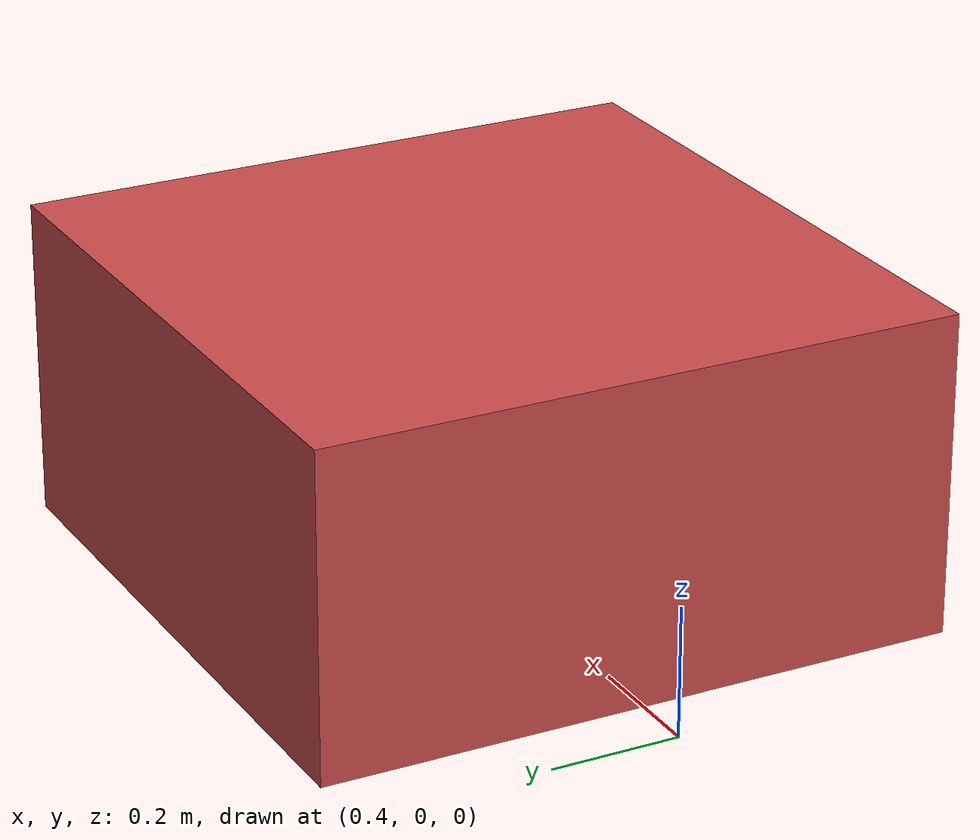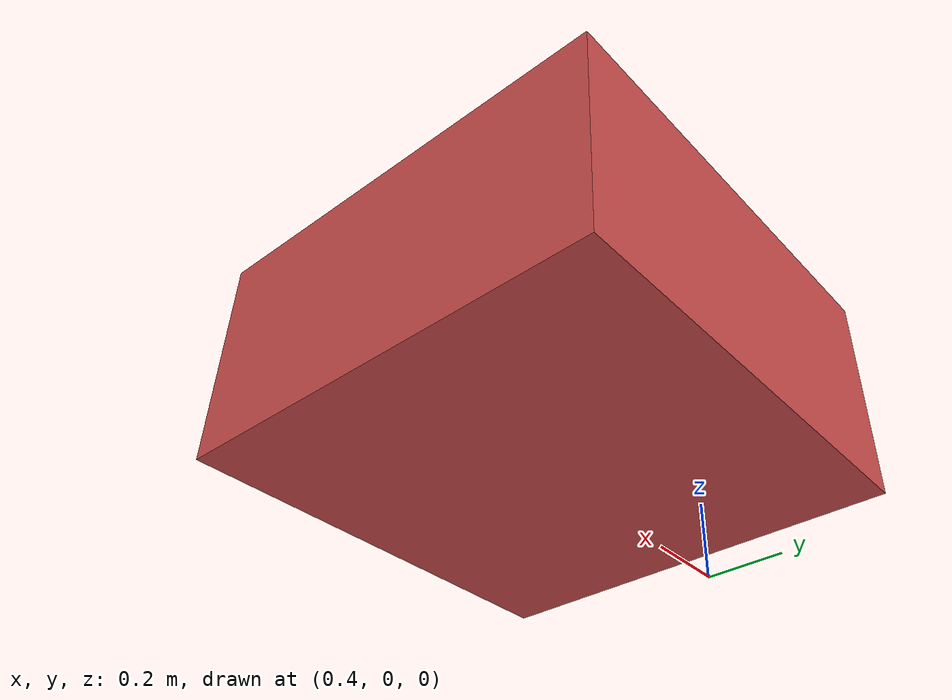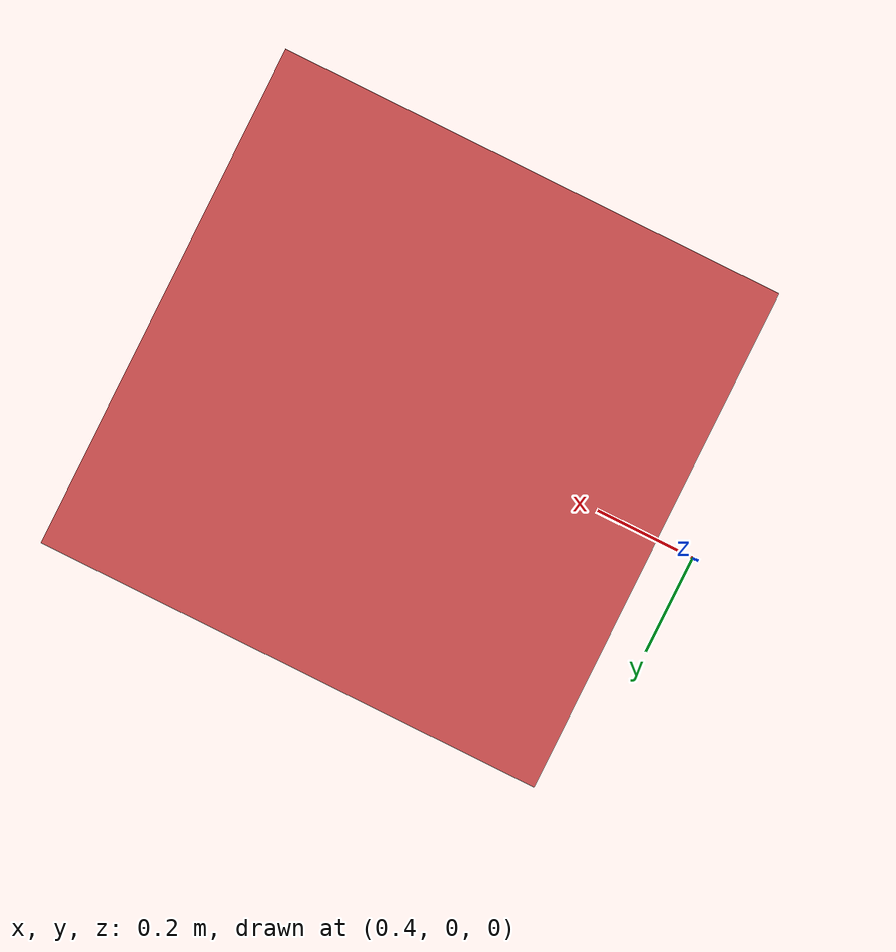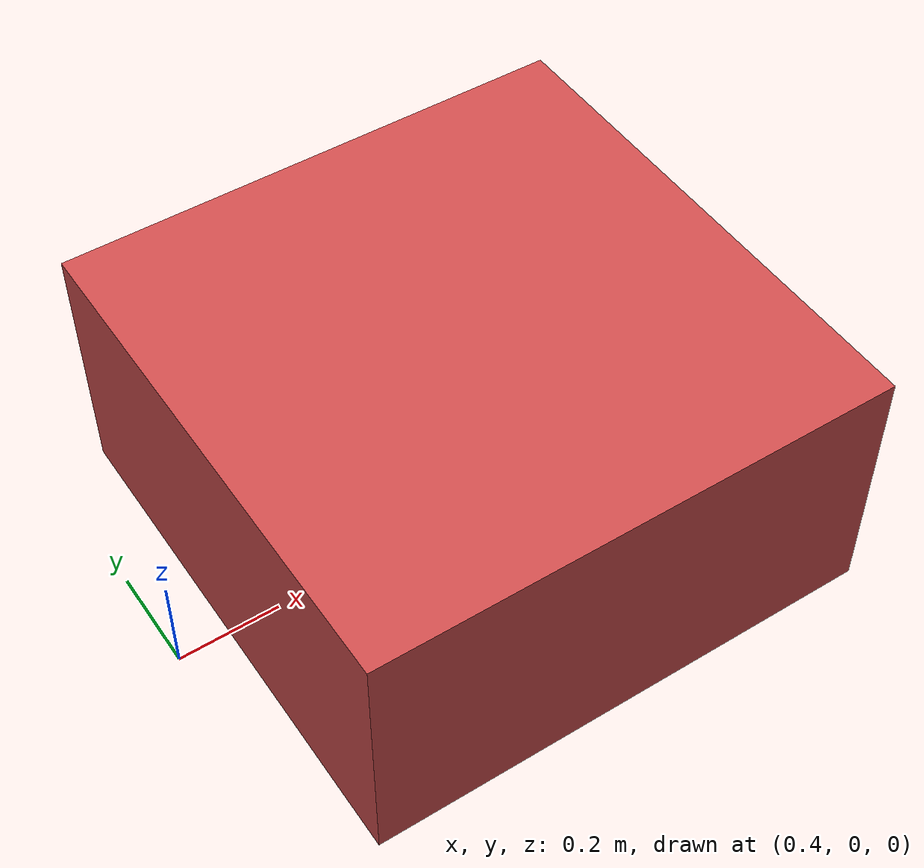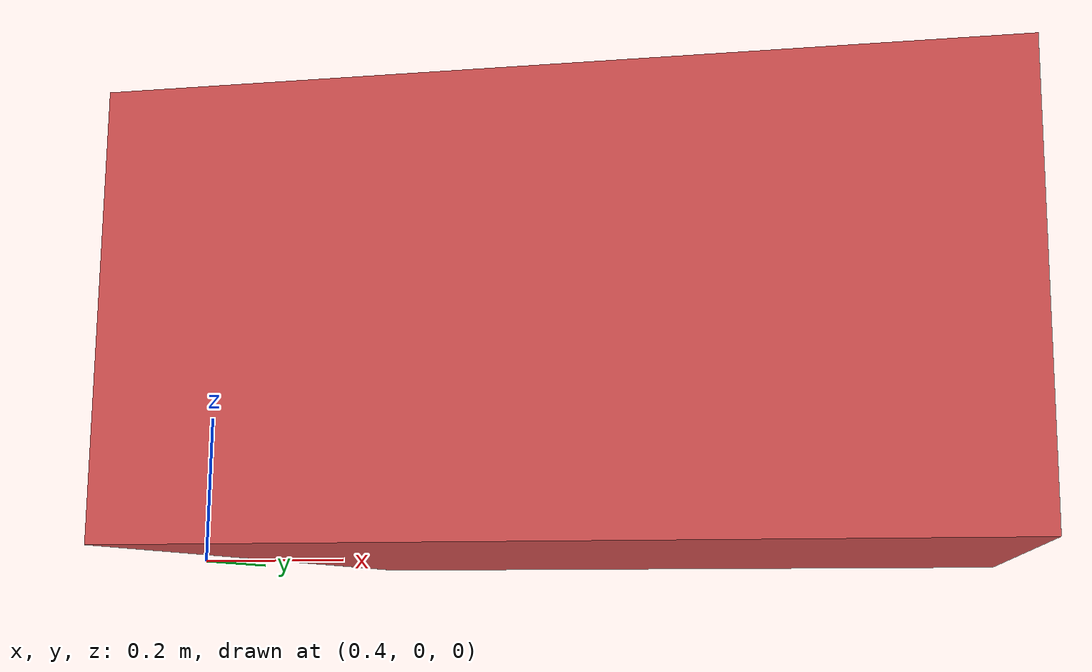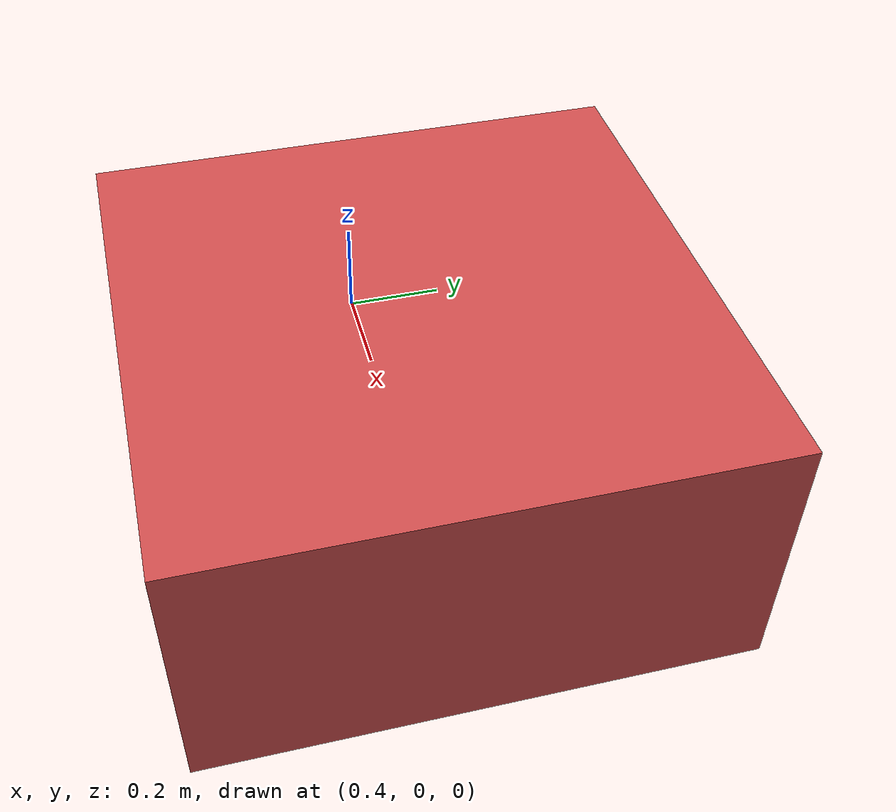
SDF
<?xml version="1.0" ?>
<sdf version="1.6">
  <model name="static_box">
    <static>true</static>
    <link name="link">
      <pose>1 0 0.25 0 0 0</pose>
      <collision name="collision">
        <geometry>
          <box><size>1 1 0.5</size></box>
        </geometry>
      </collision>
      <visual name="visual">
        <geometry>
          <box><size>1 1 0.5</size></box>
        </geometry>
        <material>
          <ambient>0.8 0.3 0.3 1</ambient>
        </material>
      </visual>
    </link>
  </model>
</sdf>
